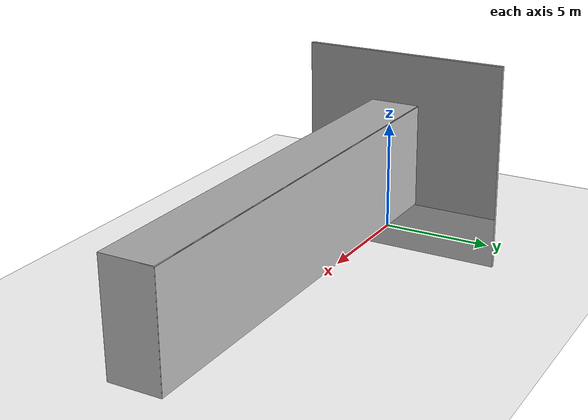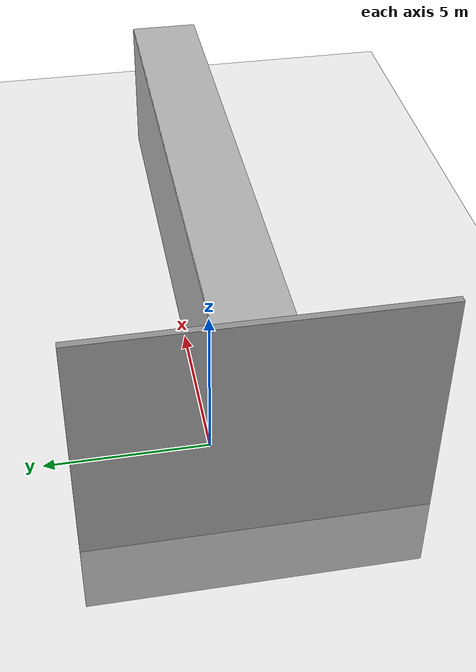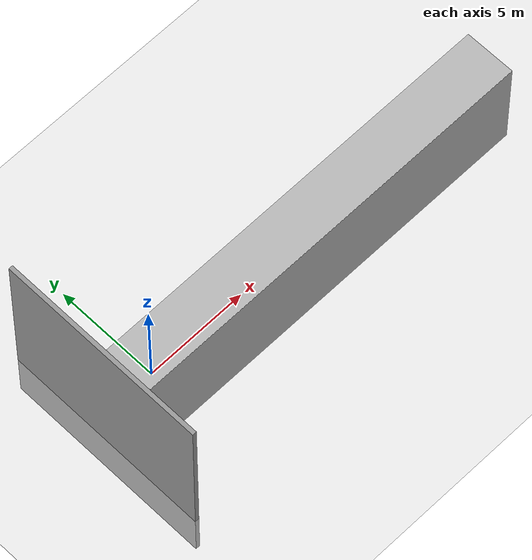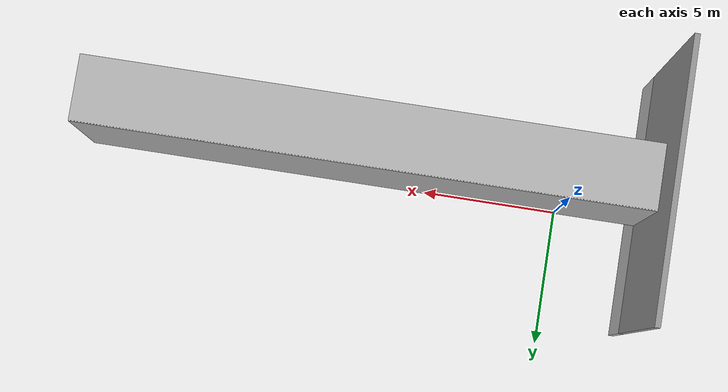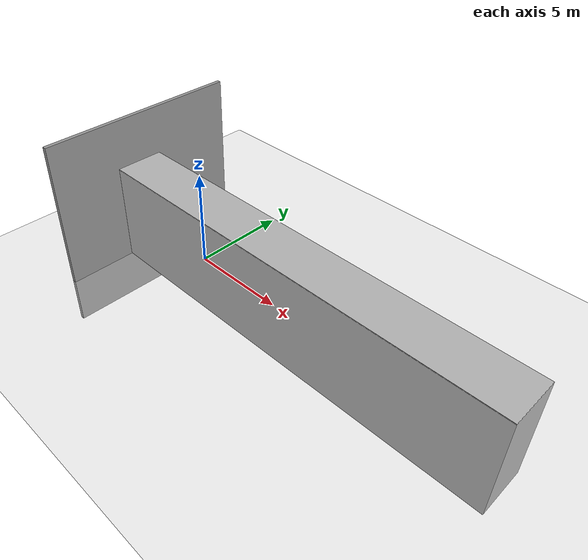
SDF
<sdf version="1.7">
 <world name="default">
  <light name="sun" type="directional">
   <pose>0 0 10 0 -0 0</pose>
   <diffuse>0.8 0.8 0.8 1</diffuse>
   <specular>0.2 0.2 0.2 1</specular>
   <attenuation>
    <range>1000</range>
    <constant>0.9</constant>
    <linear>0.01</linear>
    <quadratic>0.001</quadratic>
   </attenuation>
   <direction>-0.5 0.1 -0.9</direction>
   <spot><inner_angle>0</inner_angle><outer_angle>0</outer_angle><falloff>0</falloff></spot>
  </light>
  <plugin name="ros_interface_plugin" filename="librotors_gazebo_ros_interface_plugin.so"/>
  <model name="ground_plane">
   <static>1</static>
   <link name="link">
    <collision name="collision">
     <geometry><plane><normal>0 0 1</normal><size>100 100</size></plane></geometry>
     <surface>
      <contact><collide_bitmask>65535</collide_bitmask></contact>
      <friction><ode><mu>100</mu><mu2>50</mu2></ode></friction>
     </surface>
    </collision>
    <visual name="visual">
     <cast_shadows>0</cast_shadows>
     <geometry><plane><normal>0 0 1</normal><size>100 100</size></plane></geometry>
     <material>
      <script><uri>file://media/materials/scripts/gazebo.material</uri><name>Gazebo/Grey</name></script>
     </material>
    </visual>
   </link>
  </model>
  <gravity>0 0 -9.8</gravity>
  <magnetic_field>6e-06 2.3e-05 -4.2e-05</magnetic_field>
  <atmosphere type="adiabatic"/>
  <physics type="ode">
   <max_step_size>0.001</max_step_size>
   <real_time_factor>1</real_time_factor>
   <real_time_update_rate>1000</real_time_update_rate>
  </physics>
  <scene><ambient>0.4 0.4 0.4 1</ambient><background>0.7 0.7 0.7 1</background><shadows>1</shadows></scene>
  <spherical_coordinates>
   <surface_model>EARTH_WGS84</surface_model>
   <latitude_deg>0</latitude_deg>
   <longitude_deg>0</longitude_deg>
   <elevation>0</elevation>
   <heading_deg>0</heading_deg>
  </spherical_coordinates>
  <model name="mock_horiz_bwt">
   <pose>10.5497 1.74681 0.461096 0 0 -1.57</pose>
   <static>1</static>
   <link name="link">
    <collision name="collision">
     <geometry>
      <mesh>
       <uri>/home/mihir/gbplanner2_sandbox/test_env/gbplanner2_ws/src/exploration/gbplanner/planner_gazebo_sim/worlds/meshes/REDHUS_demo_side_bwt_fixed.dae</uri>
      </mesh>
     </geometry>
    </collision>
    <visual name="visual">
     <geometry>
      <mesh>
       <uri>/home/mihir/gbplanner2_sandbox/test_env/gbplanner2_ws/src/exploration/gbplanner/planner_gazebo_sim/worlds/meshes/REDHUS_demo_side_bwt_fixed.dae</uri>
      </mesh>
     </geometry>
    </visual>
   </link>
  </model>
  <model name="grey_wall">
   <static>1</static>
   <link name="link">
    <pose>0 0 2.5 0 -0 0</pose>
    <collision name="collision"><geometry><box><size>10 0.2 10</size></box></geometry></collision>
    <visual name="visual">
     <cast_shadows>0</cast_shadows>
     <geometry><box><size>10 0.2 10</size></box></geometry>
     <material><script><name>vrc/grey_wall</name><uri>__default__</uri></script></material>
    </visual>
   </link>
   <pose>-3.18941 -0.827998 0 0 -0 1.57</pose>
  </model>
 </world>
</sdf>
